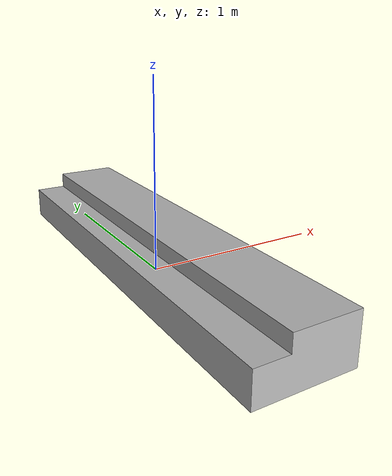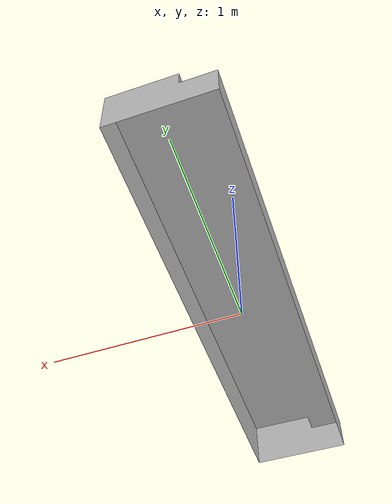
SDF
<?xml version="1.0" ?>
<sdf version='1.4'>
  <model name="madera">
      <static>1</static>
      <link name='link'>
        <visual name='visual'>
          <geometry>
            <mesh>
              <uri>model://madera/meshes/madera.dae</uri>
              <scale>0.5 0.5 0.5</scale>
            </mesh>
          </geometry>
        </visual>
        <collision name='collision'>
          <laser_retro>0</laser_retro>
          <max_contacts>10</max_contacts>
          <pose>0 0 0.15 0 0 0</pose>
          <geometry>
            <box>
             <size>0.5 2.27 0.3</size>
            </box>
          </geometry>
       </collision>
      </link>
  </model>
</sdf>
